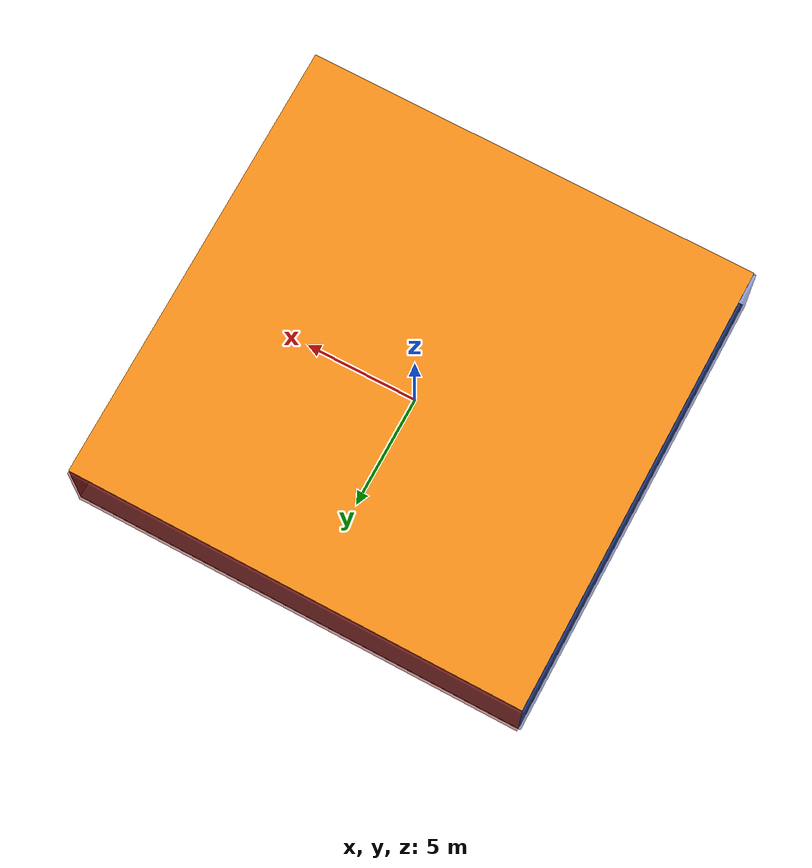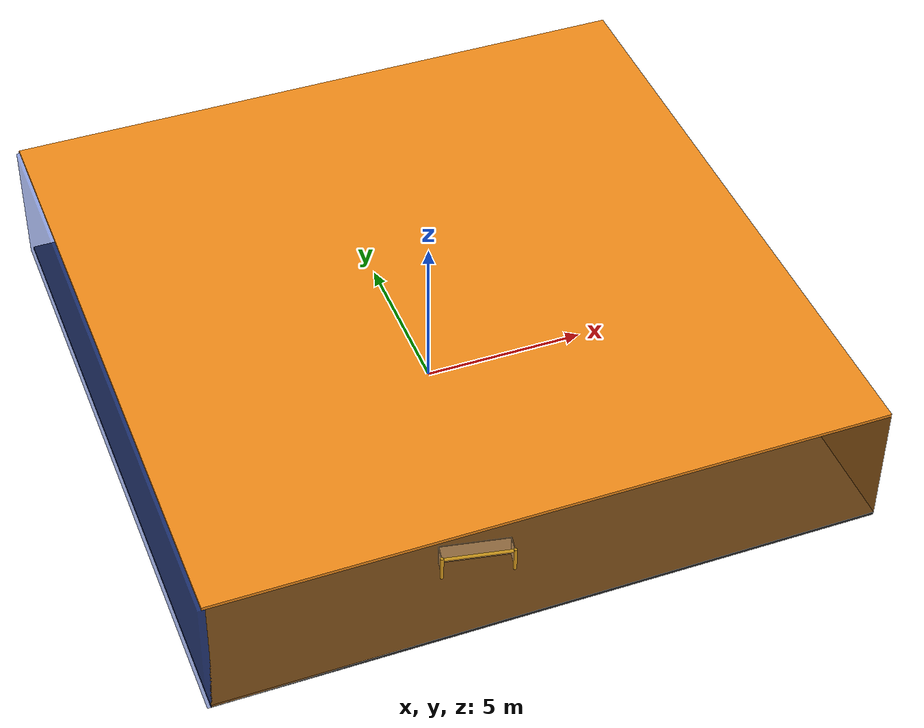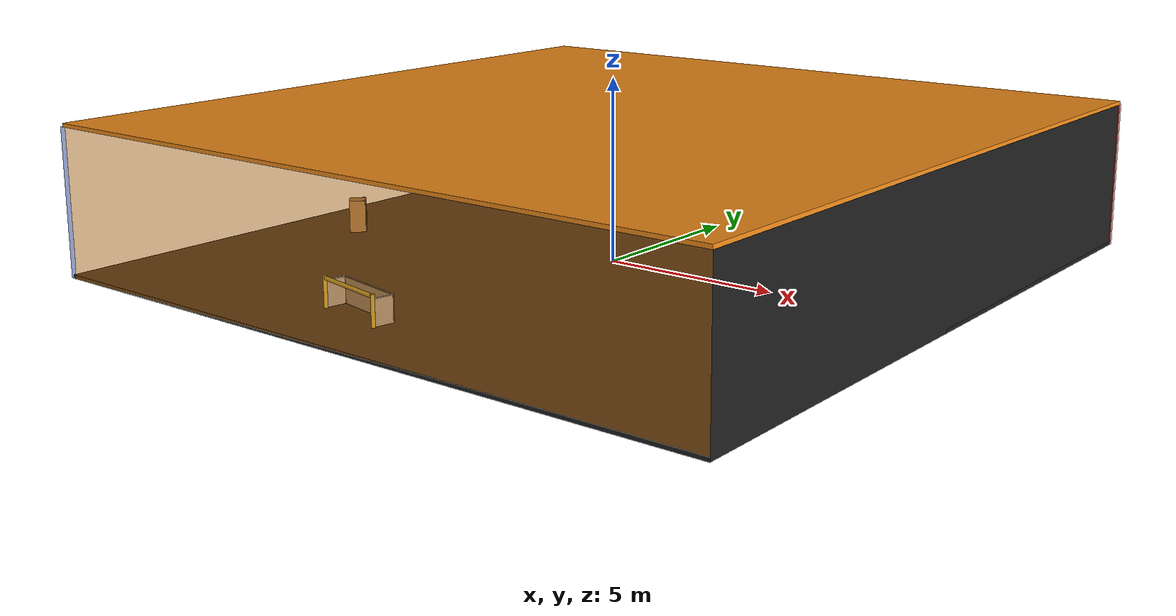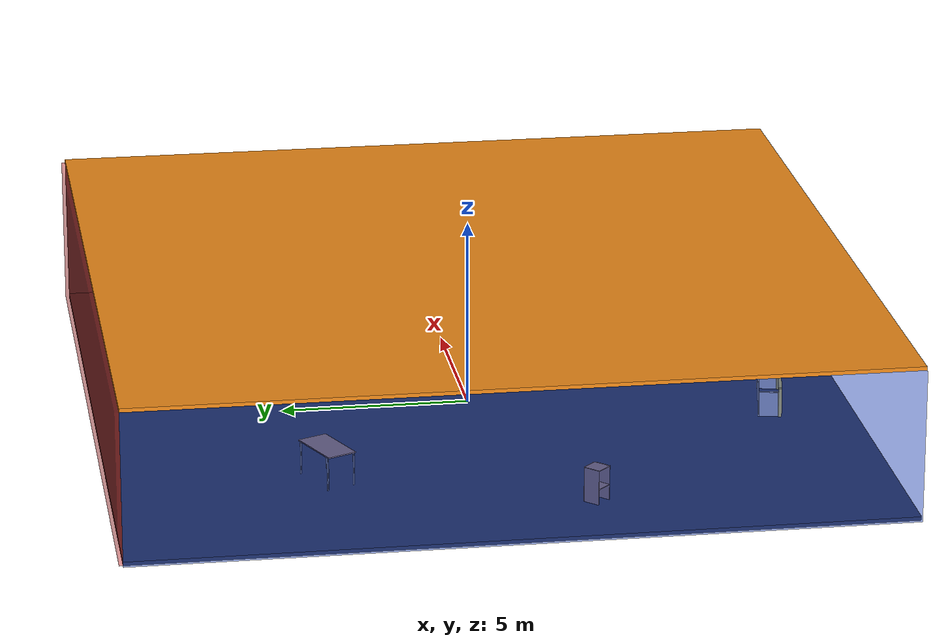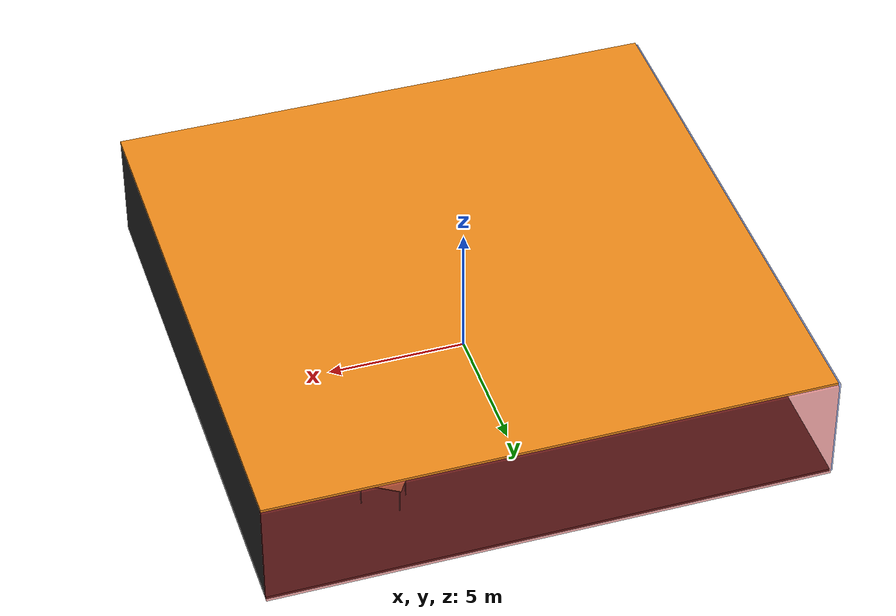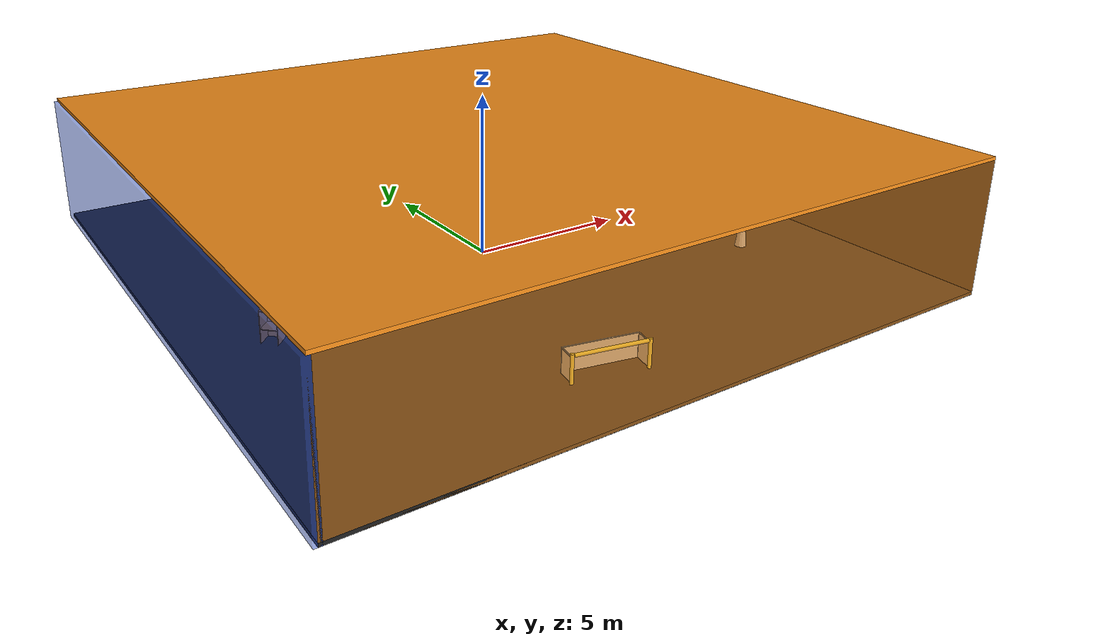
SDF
<sdf version="1.4">
 <world name="default">
  <physics type="ode">
   <max_step_size>0.001</max_step_size>
   <real_time_factor>1</real_time_factor>
   <real_time_update_rate>1000</real_time_update_rate>
   <gravity>0 0 -9.8</gravity>
  </physics>
  <scene><ambient>0.4 0.4 0.4 1</ambient><background>0.7 0.7 0.7 1</background><shadows>1</shadows></scene>
  <model name="Surrounding">
   <static>1</static>
   <link name="Ceiling">
    <collision name="Ceiling_Collision"><geometry><box><size>20 20 0.1</size></box></geometry></collision>
    <visual name="Ceiling_Visual">
     <geometry><box><size>20 20 0.1</size></box></geometry>
     <material>
      <script><uri>file://media/materials/scripts/gazebo.material</uri><name>Gazebo/Orange</name></script>
     </material>
    </visual>
    <pose>0 0 4.05 0 0 0</pose>
   </link>
   <link name="Wall_South">
    <collision name="Wall_South_Collision">
     <geometry><box><size>20 0 4</size></box></geometry>
     <pose>0 0 2 0 -0 0</pose>
    </collision>
    <visual name="Wall_South_Visual">
     <pose>0 0 2 0 -0 0</pose>
     <geometry><box><size>20 0 4</size></box></geometry>
     <material>
      <script>
       <uri>file://media/materials/scripts/gazebo.material</uri>
       <name>Gazebo/OrangeTransparent</name>
      </script>
     </material>
    </visual>
    <velocity_decay><linear>0</linear><angular>0</angular></velocity_decay>
    <pose>0 -10 0 0 -0 0</pose>
   </link>
   <link name="Wall_East">
    <collision name="Wall_21_Collision">
     <geometry><box><size>20 0 4</size></box></geometry>
     <pose>0 0 2 0 -0 0</pose>
    </collision>
    <visual name="Wall_21_Visual">
     <pose>0 0 2 0 -0 0</pose>
     <geometry><box><size>20 0 4</size></box></geometry>
     <material>
      <script><uri>file://media/materials/scripts/gazebo.material</uri><name>Gazebo/FlatBlack</name></script>
     </material>
    </visual>
    <velocity_decay><linear>0</linear><angular>0</angular></velocity_decay>
    <pose>10 0 0 0 -0 1.5708</pose>
   </link>
   <link name="Wall_North">
    <collision name="Wall_22_Collision">
     <geometry><box><size>20 0.2 4</size></box></geometry>
     <pose>0 0 2 0 -0 0</pose>
    </collision>
    <visual name="Wall_22_Visual">
     <pose>0 0 2 0 -0 0</pose>
     <geometry><box><size>20 0.2 4</size></box></geometry>
     <material>
      <script><uri>file://media/materials/scripts/gazebo.material</uri><name>Gazebo/RedTransparent</name></script>
     </material>
    </visual>
    <velocity_decay><linear>0</linear><angular>0</angular></velocity_decay>
    <pose>0 10 0 0 -0 0</pose>
   </link>
   <link name="Wall_West">
    <collision name="Wall_23_Collision">
     <geometry><box><size>20 0.2 4</size></box></geometry>
     <pose>0 0 2 0 -0 0</pose>
    </collision>
    <visual name="Wall_23_Visual">
     <pose>0 0 2 0 -0 0</pose>
     <geometry><box><size>20 0.2 4</size></box></geometry>
     <material>
      <script><uri>file://media/materials/scripts/gazebo.material</uri><name>Gazebo/BlueTransparent</name></script>
     </material>
    </visual>
    <velocity_decay><linear>0</linear><angular>0</angular></velocity_decay>
    <pose>-10 0 0 0 0 -1.5708</pose>
   </link>
   <link name="Ground_link">
    <collision name="collision">
     <pose>0 0 .05 0 -0 0</pose>
     <geometry><box><size>20 20 0.1</size></box></geometry>
    </collision>
    <visual name="visual">
     <pose>0 0 .05 0 -0 0</pose>
     <geometry><box><size>20 20 0.1</size></box></geometry>
     <material>
      <script><uri>file://media/materials/scripts/gazebo.material</uri><name>Gazebo/FlatBlack</name></script>
     </material>
    </visual>
   </link>
   <static>1</static>
  </model>
  <spherical_coordinates>
   <surface_model>EARTH_WGS84</surface_model>
   <latitude_deg>0</latitude_deg>
   <longitude_deg>0</longitude_deg>
   <elevation>0</elevation>
   <heading_deg>0</heading_deg>
  </spherical_coordinates>
  <light name="lightball_0" type="diffuse">
   <diffuse>0.8 0.8 0.8 1</diffuse>
   <specular>0.2 0.2 0.2 1</specular>
   <attenuation>
    <range>100</range>
    <constant>0.7</constant>
    <linear>0.01</linear>
    <quadratic>0.001</quadratic>
   </attenuation>
   <direction>-0.5 0.1 -0.9</direction>
   <pose>-8.09270531053 8.93715018824 3.06464944413 0 0 0</pose>
  </light>
  <light name="lightball_1" type="diffuse">
   <diffuse>0.8 0.8 0.8 1</diffuse>
   <specular>0.2 0.2 0.2 1</specular>
   <attenuation>
    <range>100</range>
    <constant>0.7</constant>
    <linear>0.01</linear>
    <quadratic>0.001</quadratic>
   </attenuation>
   <direction>-0.5 0.1 -0.9</direction>
   <pose>-7.95350057221 8.21238661769 2.93499425093 0 0 0</pose>
  </light>
  <light name="lightball_2" type="diffuse">
   <diffuse>0.8 0.8 0.8 1</diffuse>
   <specular>0.2 0.2 0.2 1</specular>
   <attenuation>
    <range>100</range>
    <constant>0.7</constant>
    <linear>0.01</linear>
    <quadratic>0.001</quadratic>
   </attenuation>
   <direction>-0.5 0.1 -0.9</direction>
   <pose>-6.88177477834 1.15852382172 1.17280980974 0 0 0</pose>
  </light>
  <light name="lightball_3" type="diffuse">
   <diffuse>0.8 0.8 0.8 1</diffuse>
   <specular>0.2 0.2 0.2 1</specular>
   <attenuation>
    <range>100</range>
    <constant>0.7</constant>
    <linear>0.01</linear>
    <quadratic>0.001</quadratic>
   </attenuation>
   <direction>-0.5 0.1 -0.9</direction>
   <pose>-8.52336959886 -4.98903885478 1.23595454963 0 0 0</pose>
  </light>
  <light name="lightball_4" type="diffuse">
   <diffuse>0.8 0.8 0.8 1</diffuse>
   <specular>0.2 0.2 0.2 1</specular>
   <attenuation>
    <range>100</range>
    <constant>0.7</constant>
    <linear>0.01</linear>
    <quadratic>0.001</quadratic>
   </attenuation>
   <direction>-0.5 0.1 -0.9</direction>
   <pose>8.40596917092 4.36581207095 1.02421658653 0 0 0</pose>
  </light>
  <light name="lightball_5" type="diffuse">
   <diffuse>0.8 0.8 0.8 1</diffuse>
   <specular>0.2 0.2 0.2 1</specular>
   <attenuation>
    <range>100</range>
    <constant>0.7</constant>
    <linear>0.01</linear>
    <quadratic>0.001</quadratic>
   </attenuation>
   <direction>-0.5 0.1 -0.9</direction>
   <pose>-3.61300888708 5.36040373989 2.91038128829 0 0 0</pose>
  </light>
  <light name="lightball_6" type="diffuse">
   <diffuse>0.8 0.8 0.8 1</diffuse>
   <specular>0.2 0.2 0.2 1</specular>
   <attenuation>
    <range>100</range>
    <constant>0.7</constant>
    <linear>0.01</linear>
    <quadratic>0.001</quadratic>
   </attenuation>
   <direction>-0.5 0.1 -0.9</direction>
   <pose>5.53014285627 -1.17699698469 3.64718494959 0 0 0</pose>
  </light>
  <include><uri>model://cabinet</uri><pose>-7.72882990075 -2.1440104209 0 0 0 0.793279185447</pose></include>
  <include><uri>model://table</uri><pose>-5.29076831074 4.41115560708 0 0 0 0.414791263192</pose></include>
  <include>
   <uri>model://robocup_3Dsim_goal</uri>
   <pose>-1.56864116387 -8.15954921541 0 0 0 1.38116892779</pose>
  </include>
  <include><uri>model://table</uri><pose>5.01396727478 6.78306950316 0 0 0 2.58728303929</pose></include>
  <include>
   <uri>model://construction_cone</uri>
   <pose>6.96250323518 -4.07674929886 0 0 0 1.08749757729</pose>
  </include>
  <include>
   <uri>model://robocup_3Dsim_goal</uri>
   <pose>7.05349356446 4.497703612 0 0 0 2.54842734059</pose>
  </include>
 </world>
</sdf>

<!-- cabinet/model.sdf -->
<sdf version="1.5">
  <model name="cabinet">
    <static>true</static>
    <link name="cabinet_bottom_plate">
      <inertial>
        <pose>0 0 -1 0 0 0</pose>
        <inertia>
          <ixx>2.050000</ixx>
          <ixy>0</ixy>
          <ixz>0</ixz>
          <iyy>2.050000</iyy>
          <iyz>0</iyz>
          <izz>2.050000</izz>
        </inertia>
        <mass>25.000000</mass>
      </inertial>
      <collision name="cabinet_bottom_plate_geom">
        <pose>0 0 0.010000 0 0 0</pose>
        <geometry>
          <box>
            <size>0.450000 0.450000 0.020000</size>
          </box>
        </geometry>
      </collision>
      <visual name="cabinet_bottom_plate_geom_visual">
        <pose>0 0 0.010000 0 0 0</pose>
        <geometry>
          <box>
            <size>0.450000 0.450000 0.020000</size>
          </box>
        </geometry>
        <material>
          <script>
            <uri>model://media/materials/scripts/gazebo.material</uri>
            <name>Gazebo/Wood</name>
          </script>
        </material>
      </visual>
      <collision name="cabinet_bottom_plate_geom_cabinet_back_plate">
        <pose>0.235000 0 0.510000 0 0 0</pose>
        <geometry>
          <box>
            <size>0.020000 0.450000 1.020000</size>
          </box>
        </geometry>
      </collision>
      <visual name="cabinet_bottom_plate_geom_cabinet_back_plate_visual">
        <pose>0.235000 0 0.510000 0 0 0</pose>
        <geometry>
          <box>
            <size>0.020000 0.450000 1.020000</size>
          </box>
        </geometry>
        <material>
          <script>
            <uri>model://media/materials/scripts/gazebo.material</uri>
            <name>Gazebo/Wood</name>
          </script>
        </material>
      </visual>
      <collision name="cabinet_bottom_plate_geom_cabinet_left_plate">
        <pose>0 0.235000 0.510000 0 0 0</pose>
        <geometry>
          <box>
            <size>0.450000 0.020000 1.020000</size>
          </box>
        </geometry>
      </collision>
      <visual name="cabinet_bottom_plate_geom_cabinet_left_plate_visual">
        <pose>0 0.235000 0.510000 0 0 0</pose>
        <geometry>
          <box>
            <size>0.450000 0.020000 1.020000</size>
          </box>
        </geometry>
        <material>
          <script>
            <uri>model://media/materials/scripts/gazebo.material</uri>
            <name>Gazebo/Wood</name>
          </script>
        </material>
      </visual>
      <collision name="cabinet_bottom_plate_geom_cabinet_middle_plate">
        <pose>0 0 0.510000 0 0 0</pose>
        <geometry>
          <box>
            <size>0.450000 0.450000 0.020000</size>
          </box>
        </geometry>
      </collision>
      <visual name="cabinet_bottom_plate_geom_cabinet_middle_plate_visual">
        <pose>0 0 0.510000 0 0 0</pose>
        <geometry>
          <box>
            <size>0.450000 0.450000 0.020000</size>
          </box>
        </geometry>
        <material>
          <script>
            <uri>model://media/materials/scripts/gazebo.material</uri>
            <name>Gazebo/Wood</name>
          </script>
        </material>
      </visual>
      <collision name="cabinet_bottom_plate_geom_cabinet_right_plate">
        <pose>0 -0.235000 0.510000 0 0 0</pose>
        <geometry>
          <box>
            <size>0.450000 0.020000 1.020000</size>
          </box>
        </geometry>
      </collision>
      <visual name="cabinet_bottom_plate_geom_cabinet_right_plate_visual">
        <pose>0 -0.235000 0.510000 0 0 0</pose>
        <geometry>
          <box>
            <size>0.450000 0.020000 1.020000</size>
          </box>
        </geometry>
        <material>
          <script>
            <uri>model://media/materials/scripts/gazebo.material</uri>
            <name>Gazebo/Wood</name>
          </script>
        </material>
      </visual>
      <collision name="cabinet_bottom_plate_geom_cabinet_top_plate">
        <pose>0 0 1.010000 0 0 0</pose>
        <geometry>
          <box>
            <size>0.450000 0.450000 0.020000</size>
          </box>
        </geometry>
      </collision>
      <visual name="cabinet_bottom_plate_geom_cabinet_top_plate_visual">
        <pose>0 0 1.010000 0 0 0</pose>
        <geometry>
          <box>
            <size>0.450000 0.450000 0.020000</size>
          </box>
        </geometry>
        <material>
          <script>
            <uri>model://media/materials/scripts/gazebo.material</uri>
            <name>Gazebo/Wood</name>
          </script>
        </material>
      </visual>
    </link>
  </model>
</sdf>

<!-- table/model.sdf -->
<sdf version="1.5">
  <model name="table">
    <static>true</static>
    <link name="link">
      <collision name="surface">
        <pose>0 0 1.0 0 0 0</pose>
        <geometry>
          <box>
            <size>1.5 0.8 0.03</size>
          </box>
        </geometry>
        <surface>
          <friction>
            <ode>
              <mu>0.6</mu>
              <mu2>0.6</mu2>
            </ode>
          </friction>
        </surface>
      </collision>
      <visual name="visual1">
        <pose>0 0 1.0 0 0 0</pose>
        <geometry>
          <box>
            <size>1.5 0.8 0.03</size>
          </box>
        </geometry>
        <material>
          <script>
            <uri>model://media/materials/scripts/gazebo.material</uri>
            <name>Gazebo/Wood</name>
          </script>
        </material>
      </visual>
      <collision name="front_left_leg">
        <pose>0.68 0.38 0.5 0 0 0</pose>
        <geometry>
          <cylinder>
            <radius>0.02</radius>
            <length>1.0</length>
          </cylinder>
        </geometry>
      </collision>
      <visual name="front_left_leg">
        <pose>0.68 0.38 0.5 0 0 0</pose>
        <geometry>
          <cylinder>
            <radius>0.02</radius>
            <length>1.0</length>
          </cylinder>
        </geometry>
        <material>
          <script>
            <uri>model://media/materials/scripts/gazebo.material</uri>
            <name>Gazebo/Grey</name>
          </script>
        </material>
      </visual>
      <collision name="front_right_leg">
        <pose>0.68 -0.38 0.5 0 0 0</pose>
        <geometry>
          <cylinder>
            <radius>0.02</radius>
            <length>1.0</length>
          </cylinder>
        </geometry>
      </collision>
      <visual name="front_right_leg">
        <pose>0.68 -0.38 0.5 0 0 0</pose>
        <geometry>
          <cylinder>
            <radius>0.02</radius>
            <length>1.0</length>
          </cylinder>
        </geometry>
        <material>
          <script>
            <uri>model://media/materials/scripts/gazebo.material</uri>
            <name>Gazebo/Grey</name>
          </script>
        </material>
      </visual>
      <collision name="back_right_leg">
        <pose>-0.68 -0.38 0.5 0 0 0</pose>
        <geometry>
          <cylinder>
            <radius>0.02</radius>
            <length>1.0</length>
          </cylinder>
        </geometry>
      </collision>
      <visual name="back_right_leg">
        <pose>-0.68 -0.38 0.5 0 0 0</pose>
        <geometry>
          <cylinder>
            <radius>0.02</radius>
            <length>1.0</length>
          </cylinder>
        </geometry>
        <material>
          <script>
            <uri>model://media/materials/scripts/gazebo.material</uri>
            <name>Gazebo/Grey</name>
          </script>
        </material>
      </visual>
      <collision name="back_left_leg">
        <pose>-0.68 0.38 0.5 0 0 0</pose>
        <geometry>
          <cylinder>
            <radius>0.02</radius>
            <length>1.0</length>
          </cylinder>
        </geometry>
      </collision>
      <visual name="back_left_leg">
        <pose>-0.68 0.38 0.5 0 0 0</pose>
        <geometry>
          <cylinder>
            <radius>0.02</radius>
            <length>1.0</length>
          </cylinder>
        </geometry>
        <material>
          <script>
            <uri>model://media/materials/scripts/gazebo.material</uri>
            <name>Gazebo/Grey</name>
          </script>
        </material>
      </visual>
    </link>
  </model>
</sdf>

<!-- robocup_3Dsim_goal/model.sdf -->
<sdf version="1.5">
  <model name="robocup_3d_goal">
    <static>true</static>
    <link name="left_post">
      <pose>0 1.05 0.45 0 0 0</pose>
      <collision name="collision">
        <geometry>
          <cylinder>
            <radius>0.05</radius>
            <length>0.9</length>
          </cylinder>
        </geometry>
      </collision>
      <visual name="visual">
        <geometry>
          <cylinder>
            <radius>0.05</radius>
            <length>0.9</length>
          </cylinder>
        </geometry>
        <material>
          <script>
            <uri>file://media/materials/scripts/gazebo.material</uri>
            <name>Gazebo/ZincYellow</name>
          </script>
        </material>
      </visual>
    </link>
    <link name="left_support_horiz_lower">
      <pose>0.30 1.05 0.01 0 0 0</pose>
      <collision name="collision">
        <geometry>
          <box>
            <size>0.50 0.02 0.02</size>
          </box>
        </geometry>
      </collision>
      <visual name="visual">
        <geometry>
          <box>
            <size>0.50 0.02 0.02</size>
          </box>
        </geometry>
        <material>
          <script>
            <uri>file://media/materials/scripts/gazebo.material</uri>
            <name>Gazebo/White</name>
          </script>
        </material>
      </visual>
    </link>
    <link name="left_support_horiz_upper">
      <pose>0.30 1.05 0.79 0 0 0</pose>
      <collision name="collision">
        <geometry>
          <box>
            <size>0.50 0.02 0.02</size>
          </box>
        </geometry>
      </collision>
      <visual name="visual">
        <geometry>
          <box>
            <size>0.50 0.02 0.02</size>
          </box>
        </geometry>
        <material>
          <script>
            <uri>file://media/materials/scripts/gazebo.material</uri>
            <name>Gazebo/White</name>
          </script>
        </material>
      </visual>
    </link>
    <link name="left_support_vertical">
      <pose>0.56 1.05 0.4 0 1.5708 0</pose>
      <collision name="collision">
        <geometry>
          <box>
            <size>0.80 0.02 0.02</size>
          </box>
        </geometry>
      </collision>
      <visual name="visual">
        <geometry>
          <box>
            <size>0.80 0.02 0.02</size>
          </box>
        </geometry>
        <material>
          <script>
            <uri>file://media/materials/scripts/gazebo.material</uri>
            <name>Gazebo/White</name>
          </script>
        </material>
      </visual>
    </link>
    <link name="right_support_horiz_lower">
      <pose>0.30 -1.05 0.01 0 0 0</pose>
      <collision name="collision">
        <geometry>
          <box>
            <size>0.50 0.02 0.02</size>
          </box>
        </geometry>
      </collision>
      <visual name="visual">
        <geometry>
          <box>
            <size>0.50 0.02 0.02</size>
          </box>
        </geometry>
        <material>
          <script>
            <uri>file://media/materials/scripts/gazebo.material</uri>
            <name>Gazebo/White</name>
          </script>
        </material>
      </visual>
    </link>
    <link name="right_support_horiz_upper">
      <pose>0.30 -1.05 0.79 0 0 0</pose>
      <collision name="collision">
        <geometry>
          <box>
            <size>0.50 0.02 0.02</size>
          </box>
        </geometry>
      </collision>
      <visual name="visual">
        <geometry>
          <box>
            <size>0.50 0.02 0.02</size>
          </box>
        </geometry>
        <material>
          <script>
            <uri>file://media/materials/scripts/gazebo.material</uri>
            <name>Gazebo/White</name>
          </script>
        </material>
      </visual>
    </link>
    <link name="right_support_vertical">
      <pose>0.56 -1.05 0.4 0 1.5708 0</pose>
      <collision name="collision">
        <geometry>
          <box>
            <size>0.80 0.02 0.02</size>
          </box>
        </geometry>
      </collision>
      <visual name="visual">
        <geometry>
          <box>
            <size>0.80 0.02 0.02</size>
          </box>
        </geometry>
        <material>
          <script>
            <uri>file://media/materials/scripts/gazebo.material</uri>
            <name>Gazebo/White</name>
          </script>
        </material>
      </visual>
    </link>
    <link name="center_support_horiz_lower">
      <pose>0.56 0 0.01 0 1.5708 0</pose>
      <collision name="collision">
        <geometry>
          <box>
            <size>0.02 2.08 0.02</size>
          </box>
        </geometry>
      </collision>
      <visual name="visual">
        <geometry>
          <box>
            <size>0.02 2.08 0.02</size>
          </box>
        </geometry>
        <material>
          <script>
            <uri>file://media/materials/scripts/gazebo.material</uri>
            <name>Gazebo/White</name>
          </script>
        </material>
      </visual>
    </link>
    <link name="center_support_horiz_upper">
      <pose>0.56 0 0.79 0 1.5708 0</pose>
      <collision name="collision">
        <geometry>
          <box>
            <size>0.02 2.08 0.02</size>
          </box>
        </geometry>
      </collision>
      <visual name="visual">
        <geometry>
          <box>
            <size>0.02 2.08 0.02</size>
          </box>
        </geometry>
        <material>
          <script>
            <uri>file://media/materials/scripts/gazebo.material</uri>
            <name>Gazebo/White</name>
          </script>
        </material>
      </visual>
    </link>
    <link name="right_post">
      <pose>0 -1.05 0.45 0 0 0</pose>
      <collision name="collision">
        <geometry>
          <cylinder>
            <radius>0.05</radius>
            <length>0.9</length>
          </cylinder>
        </geometry>
      </collision>
      <visual name="visual">
        <geometry>
          <cylinder>
            <radius>0.05</radius>
            <length>0.9</length>
          </cylinder>
        </geometry>
        <material>
          <script>
            <uri>file://media/materials/scripts/gazebo.material</uri>
            <name>Gazebo/ZincYellow</name>
          </script>
        </material>
      </visual>
    </link>
    <link name="crossbar">
      <pose>0 0 0.85 1.57 1.57 0</pose>
      <collision name="collision">
        <geometry>
          <cylinder>
            <radius>0.05</radius>
            <length>2.0</length>
          </cylinder>
        </geometry>
      </collision>
      <visual name="visual">
        <geometry>
          <cylinder>
            <radius>0.05</radius>
            <length>2.0</length>
          </cylinder>
        </geometry>
        <material>
          <script>
            <uri>file://media/materials/scripts/gazebo.material</uri>
            <name>Gazebo/ZincYellow</name>
          </script>
        </material>
      </visual>
    </link>
    <link name="center_net">
      <pose>0.56 0 0.40 0 0 0</pose>
      <collision name="collision">
        <geometry>
          <box>
            <size>0.01 2.1 0.80</size>
          </box>
        </geometry>
      </collision>
      <visual name="visual">
        <geometry>
          <box>
            <size>0.01 2.1 0.80</size>
          </box>
        </geometry>
        <material>
          <script>
            <uri>model://../model_source/models/robocup09_spl_field/materials/scripts/</uri>
            <uri>model://../model_source/models/robocup09_spl_field/materials/textures/</uri>
            <name>RoboCup/Net</name>
          </script>
        </material>
      </visual>
    </link>
    <link name="left_net">
      <pose>0.30 1.05 0.40 0 0 0</pose>
      <collision name="collision">
        <geometry>
          <box>
            <size>0.50 0.01 0.76</size>
          </box>
        </geometry>
      </collision>
      <visual name="visual">
        <geometry>
          <box>
            <size>0.50 0.01 0.76</size>
          </box>
        </geometry>
        <material>
          <script>
            <uri>model://../model_source/models/robocup09_spl_field/materials/scripts/</uri>
            <uri>model://../model_source/models/robocup09_spl_field/materials/textures/</uri>
            <name>RoboCup/Net</name>
          </script>
        </material>
      </visual>
    </link>
    <link name="right_net">
      <pose>0.30 -1.05 0.40 0 0 0</pose>
      <collision name="collision">
        <geometry>
          <box>
            <size>0.50 0.01 0.76</size>
          </box>
        </geometry>
      </collision>
      <visual name="visual">
        <geometry>
          <box>
            <size>0.50 0.01 0.76</size>
          </box>
        </geometry>
        <material>
          <script>
            <uri>model://../model_source/models/robocup09_spl_field/materials/scripts/</uri>
            <uri>model://../model_source/models/robocup09_spl_field/materials/textures/</uri>
            <name>RoboCup/Net</name>
          </script>
        </material>
      </visual>
    </link>
  </model>
</sdf>

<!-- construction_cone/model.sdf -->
<sdf version="1.5">
  <model name="Construction Cone">
    <link name="link">
      <collision name="collision">
        <geometry>
          <mesh>
            <scale>10 10 10</scale>
            <uri>file://isr-testbed/construction_cone/meshes/construction_cone.dae</uri>
          </mesh>
        </geometry>
      </collision>
      <visual name="visual">
        <geometry>
          <mesh>
            <scale>10 10 10</scale>
            <uri>file://isr-testbed/construction_cone/meshes/construction_cone.dae</uri>
          </mesh>
        </geometry>
      </visual>
    </link>
  </model>
</sdf>
